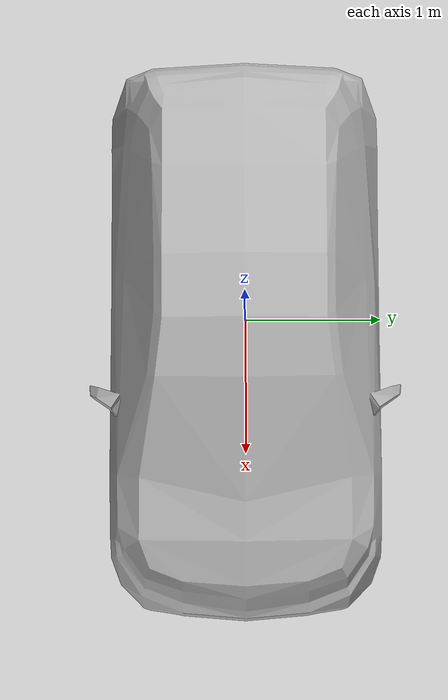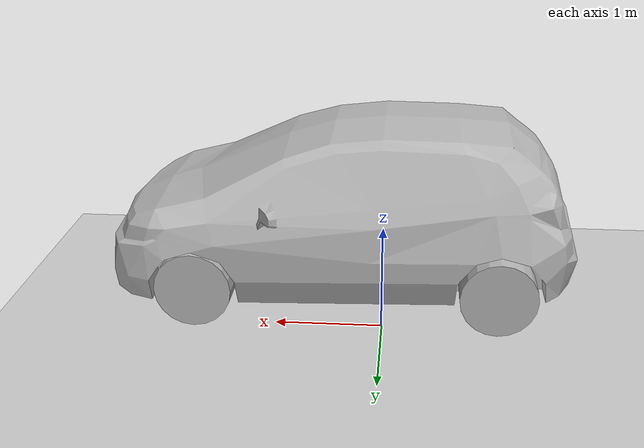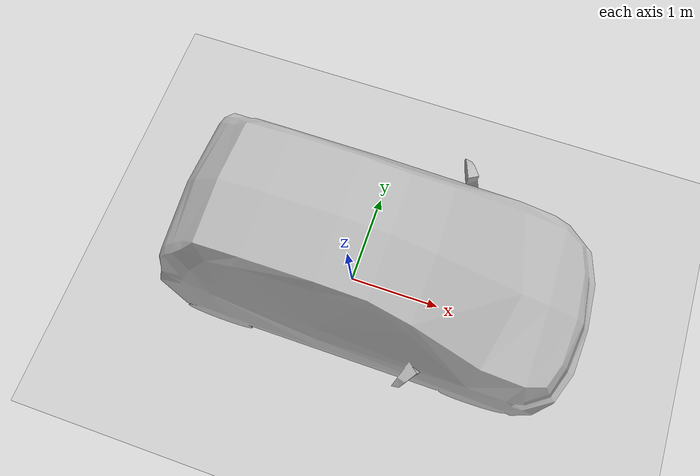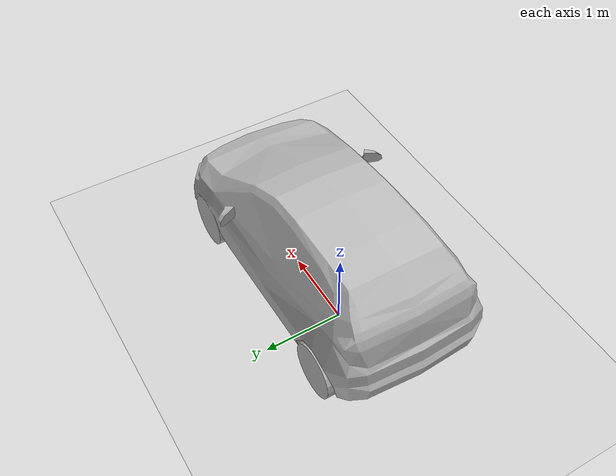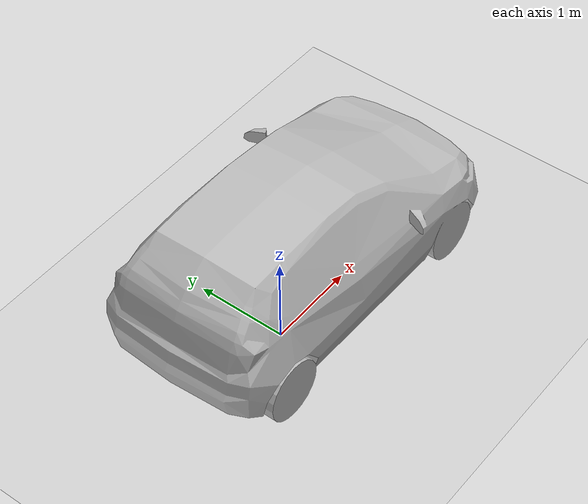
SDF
<?xml version="1.0"?>
<sdf version="1.9">
  <world name="default">
    <!-- Physics engine -->
    <physics name="ignored" type="ignored"/>

    <!-- GUI plugin -->
    <plugin filename="ignition-gazebo-gui-system" name="ignition::gazebo::systems::Gui"/>

    <!-- Include your vehicle model -->
    <include>
      <uri>model://hatchback</uri>
      <pose>0 0 0.5 0 0 0</pose>
    </include>

    <!-- Ground plane -->
    <include>
      <uri>model://ground_plane</uri>
    </include>

    <!-- Lighting -->
    <include>
      <uri>model://sun</uri>
    </include>
  </world>
</sdf>

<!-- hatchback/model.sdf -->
<sdf version="1.9">
  <model name="hatchback">
    <!-- Change to false so the model is dynamic -->
    <static>false</static>

    <link name="link">
      <collision name="collision">
        <pose>0 0 0 0 0 1.57079632679</pose>
        <geometry>
          <mesh>
            <scale>0.0254 0.0254 0.0254</scale>
            <uri>model://hatchback/meshes/hatchback.obj</uri>
          </mesh>
        </geometry>
      </collision>
      <visual name="visual">
        <pose>0 0 0 0 0 1.57079632679</pose>
        <geometry>
          <mesh>
            <scale>0.0254 0.0254 0.0254</scale>
            <uri>model://hatchback/meshes/hatchback.obj</uri>
          </mesh>
        </geometry>
      </visual>
    </link>

    <!-- Add a controller plugin that subscribes to Twist commands -->
    <plugin name="velocity_controller" filename="libignition-gazebo-velocity-control-system.so">
      <ros>
        <!-- This sets the ROS namespace for the plugin -->
        <namespace>/model/hatchback</namespace>
        <!-- Remap the plugin's command topic to "cmd_vel" (so the full topic is /model/hatchback/cmd_vel) -->
        <remapping>cmd_vel:=cmd_vel</remapping>
      </ros>
      <!-- Specify the body (link) the plugin will control -->
      <body_name>link</body_name>
    </plugin>

  </model>
</sdf>
